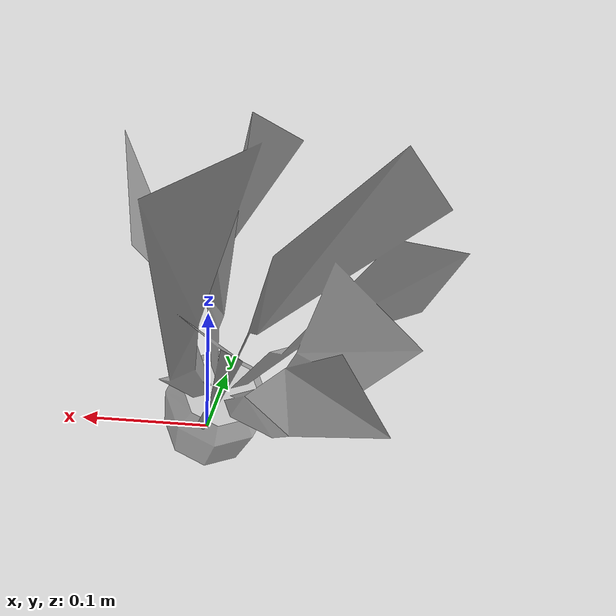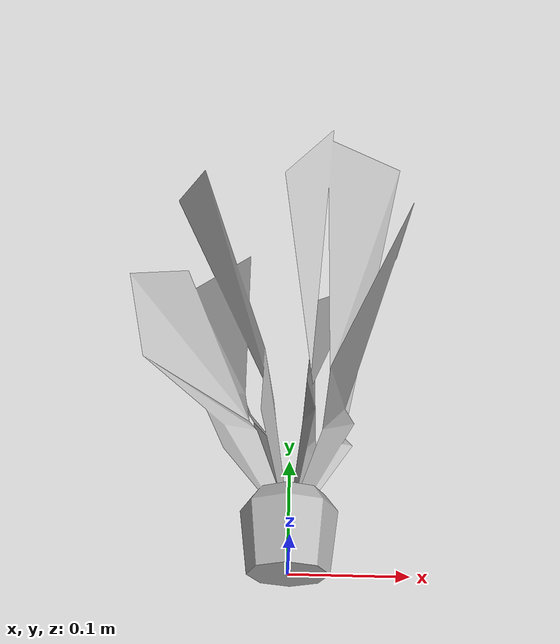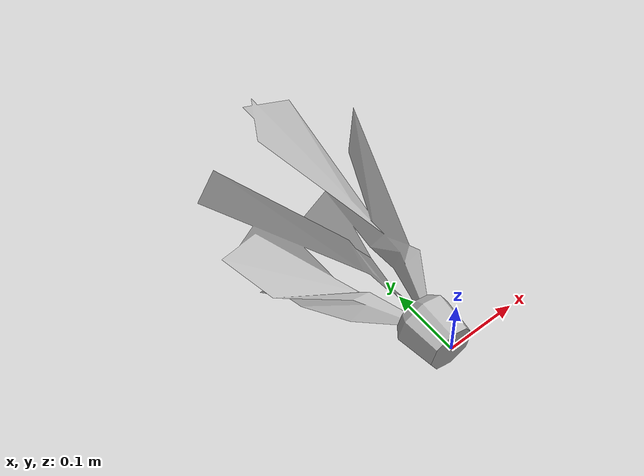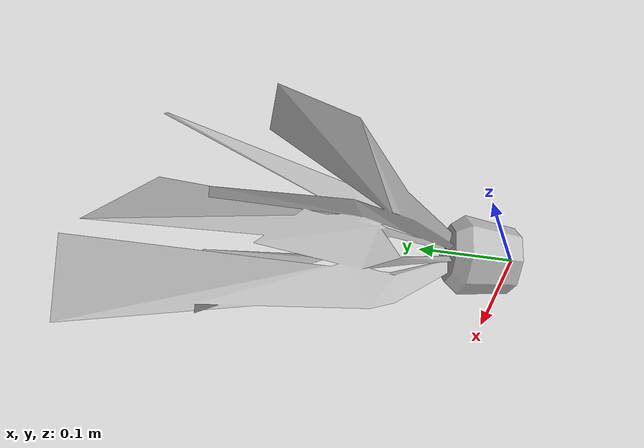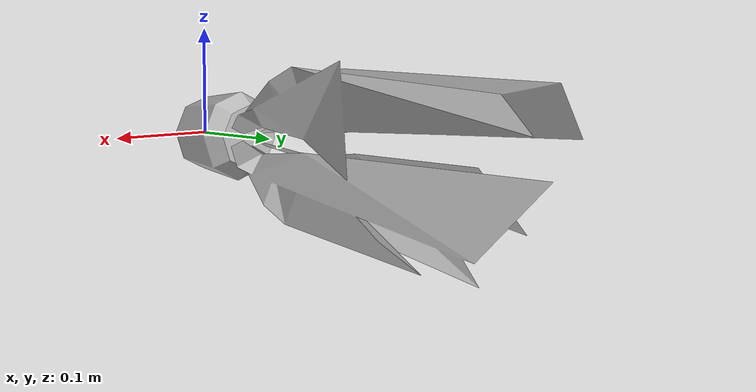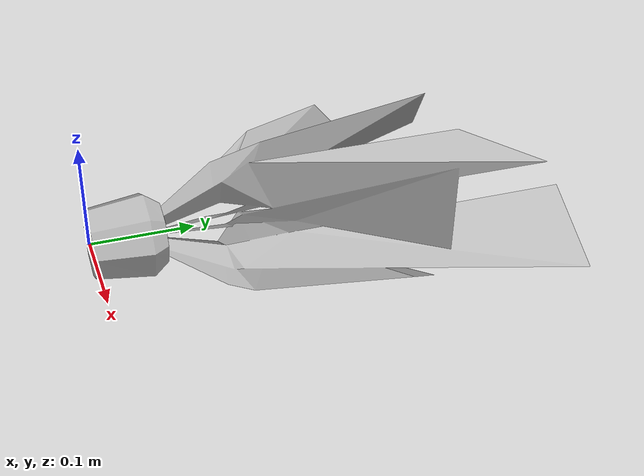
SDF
<?xml version="1.0" ?>
<sdf version="1.5">
  <model name="carrot_plant">
    <link name="link">
      <inertial>
        <pose>0 0 0.06 0 0 0</pose>
        <mass>0.390</mass>
        <inertia>
          <ixx>0.00055575</ixx>
          <ixy>0</ixy>
          <ixz>0</ixz>
          <iyy>0.00055575</iyy>
          <iyz>0</iyz>
          <izz>0.0001755</izz>
        </inertia>
      </inertial>
      <collision name="collision">
        <pose>0 0 0 0 0 0</pose>
        <geometry>
          <mesh>
            <uri>model://carrot_plant/meshes/CarrotPlant_OBJ.dae</uri>
            <size>0.1 0.1 0.1</size>
          </mesh>
        </geometry>
        <surface>
          <friction>
            <ode>
              <mu>1.0</mu>
              <mu2>1.0</mu2>
            </ode>
          </friction>
          <contact>
            <ode>
              <kp>10000000.0</kp>
              <kd>1.0</kd>
              <min_depth>0.001</min_depth>
              <max_vel>0.1</max_vel>
            </ode>
          </contact>
        </surface>
      </collision>
      <visual name="visual">
        <pose>0 0 0 0 0 0</pose>
        <geometry>
          <mesh>
            <uri>model://carrot_plant/meshes/CarrotPlant_OBJ.dae</uri>
            <size>0.1 0.1 0.1</size>
          </mesh>
        </geometry>
      </visual>
    </link>
  </model>
</sdf>
